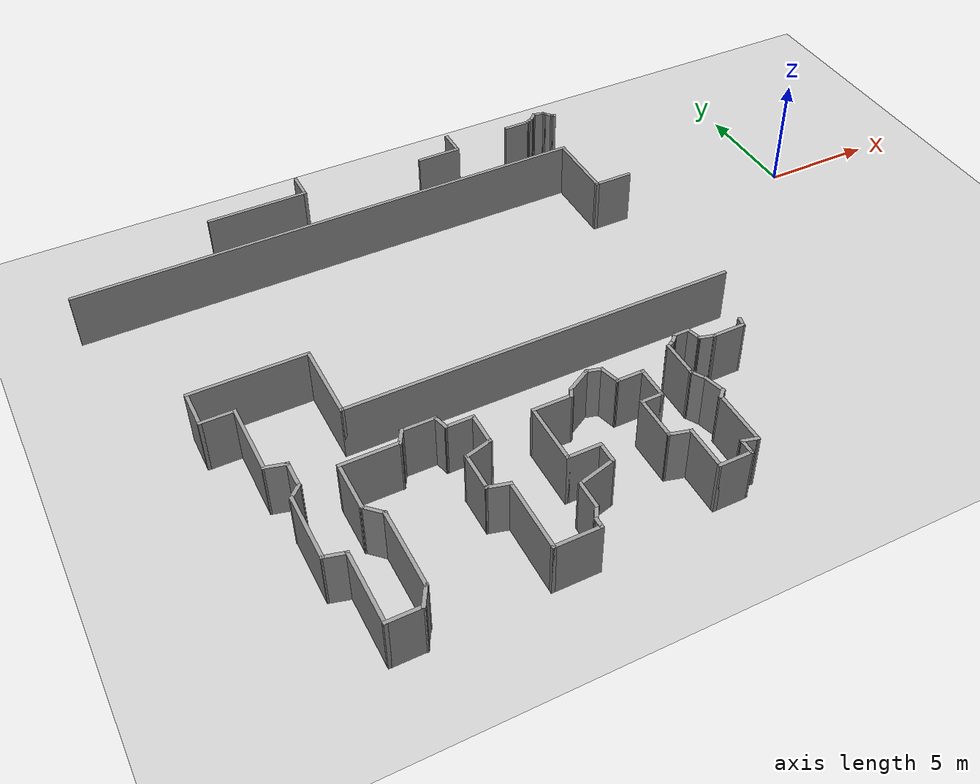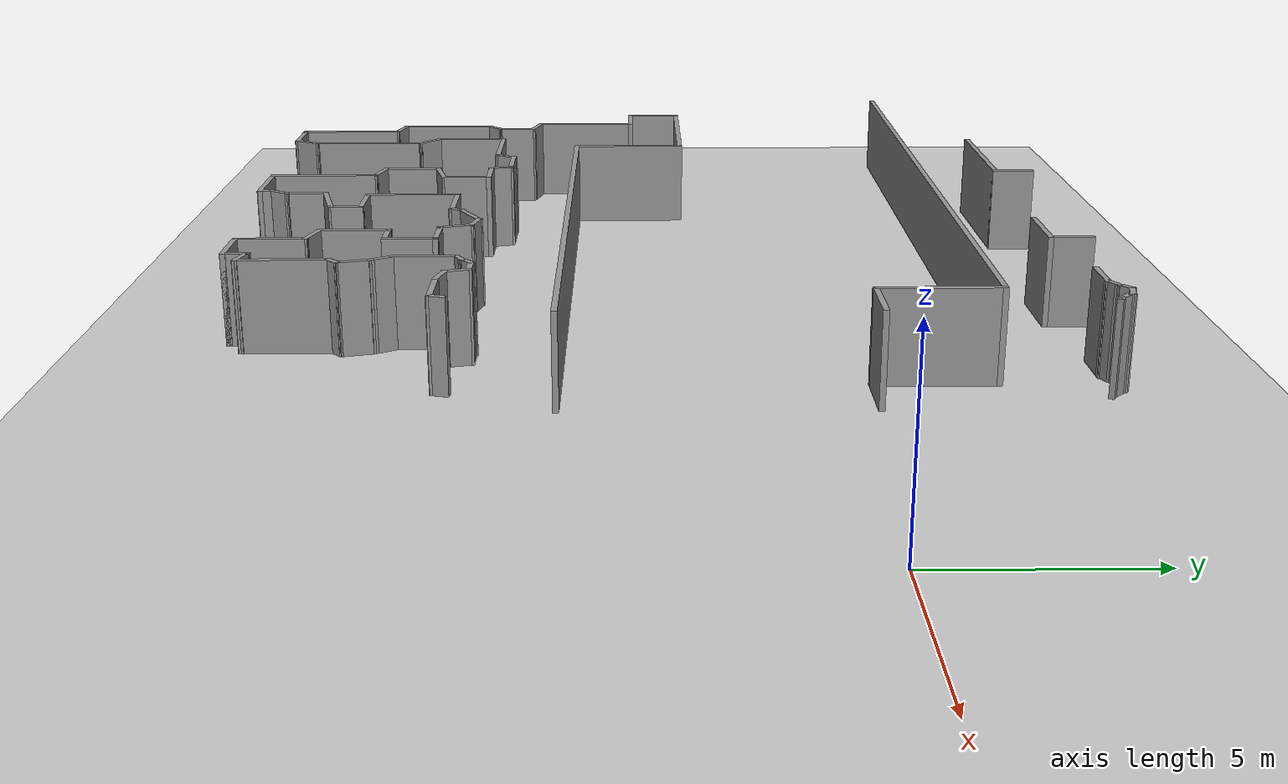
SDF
<sdf version="1.7">
 <world name="default">
  <model name="ground_plane">
   <static>1</static>
   <link name="link">
    <collision name="collision">
     <geometry><plane><normal>0 0 1</normal><size>100 100</size></plane></geometry>
     <surface>
      <contact><collide_bitmask>65535</collide_bitmask></contact>
      <friction><ode><mu>100</mu><mu2>50</mu2></ode></friction>
     </surface>
    </collision>
    <visual name="visual">
     <cast_shadows>0</cast_shadows>
     <geometry><plane><normal>0 0 1</normal><size>100 100</size></plane></geometry>
     <material>
      <script><uri>file://media/materials/scripts/gazebo.material</uri><name>Gazebo/Grey</name></script>
     </material>
    </visual>
   </link>
  </model>
  <model name="latest_world">
   <pose>-1.4911 -0.096187 0 0 -0 0</pose>
   <link name="Wall_100">
    <collision name="Wall_100_Collision">
     <geometry><box><size>1 0.15 2.5</size></box></geometry>
     <pose>0 0 1.25 0 -0 0</pose>
    </collision>
    <visual name="Wall_100_Visual">
     <pose>0 0 1.25 0 -0 0</pose>
     <geometry><box><size>1 0.15 2.5</size></box></geometry>
     <material>
      <script><uri>file://media/materials/scripts/gazebo.material</uri><name>Gazebo/Grey</name></script>
      <ambient>1 1 1 1</ambient>
     </material>
     <meta><layer>0</layer></meta>
    </visual>
    <pose>-10.3814 -12.0748 0 0 -0 -1.309</pose>
   </link>
   <link name="Wall_101">
    <collision name="Wall_101_Collision">
     <geometry><box><size>0.5 0.15 2.5</size></box></geometry>
     <pose>0 0 1.25 0 -0 0</pose>
    </collision>
    <visual name="Wall_101_Visual">
     <pose>0 0 1.25 0 -0 0</pose>
     <geometry><box><size>0.5 0.15 2.5</size></box></geometry>
     <material>
      <script><uri>file://media/materials/scripts/gazebo.material</uri><name>Gazebo/Grey</name></script>
      <ambient>1 1 1 1</ambient>
     </material>
     <meta><layer>0</layer></meta>
    </visual>
    <pose>-10.3951 -12.609 0 0 -0 -2.35619</pose>
   </link>
   <link name="Wall_102">
    <collision name="Wall_102_Collision">
     <geometry><box><size>2.5 0.15 2.5</size></box></geometry>
     <pose>0 0 1.25 0 -0 0</pose>
    </collision>
    <visual name="Wall_102_Visual">
     <pose>0 0 1.25 0 -0 0</pose>
     <geometry><box><size>2.5 0.15 2.5</size></box></geometry>
     <material>
      <script><uri>file://media/materials/scripts/gazebo.material</uri><name>Gazebo/Grey</name></script>
      <ambient>1 1 1 1</ambient>
     </material>
     <meta><layer>0</layer></meta>
    </visual>
    <pose>-10.5189 -13.9078 0 0 -0 -1.5708</pose>
   </link>
   <link name="Wall_103">
    <collision name="Wall_103_Collision">
     <geometry><box><size>0.75 0.15 2.5</size></box></geometry>
     <pose>0 0 1.25 0 -0 0</pose>
    </collision>
    <visual name="Wall_103_Visual">
     <pose>0 0 1.25 0 -0 0</pose>
     <geometry><box><size>0.75 0.15 2.5</size></box></geometry>
     <material>
      <script><uri>file://media/materials/scripts/gazebo.material</uri><name>Gazebo/Grey</name></script>
      <ambient>1 1 1 1</ambient>
     </material>
     <meta><layer>0</layer></meta>
    </visual>
    <pose>-10.8086 -15.0051 0 0 -0 2.87979</pose>
   </link>
   <link name="Wall_104">
    <collision name="Wall_104_Collision">
     <geometry><box><size>0.75 0.15 2.5</size></box></geometry>
     <pose>0 0 1.25 0 -0 0</pose>
    </collision>
    <visual name="Wall_104_Visual">
     <pose>0 0 1.25 0 -0 0</pose>
     <geometry><box><size>0.75 0.15 2.5</size></box></geometry>
     <material>
      <script><uri>file://media/materials/scripts/gazebo.material</uri><name>Gazebo/Grey</name></script>
      <ambient>1 1 1 1</ambient>
     </material>
     <meta><layer>0</layer></meta>
    </visual>
    <pose>-11.0984 -15.2275 0 0 -0 -1.5708</pose>
   </link>
   <link name="Wall_105">
    <collision name="Wall_105_Collision">
     <geometry><box><size>0.16 0.15 2.5</size></box></geometry>
     <pose>0 0 1.25 0 -0 0</pose>
    </collision>
    <visual name="Wall_105_Visual">
     <pose>0 0 1.25 0 -0 0</pose>
     <geometry><box><size>0.16 0.15 2.5</size></box></geometry>
     <material>
      <script><uri>file://media/materials/scripts/gazebo.material</uri><name>Gazebo/Grey</name></script>
      <ambient>1 1 1 1</ambient>
     </material>
     <meta><layer>0</layer></meta>
    </visual>
    <pose>-11.0934 -15.5275 0 0 -0 0</pose>
   </link>
   <link name="Wall_106">
    <collision name="Wall_106_Collision">
     <geometry><box><size>1.5 0.15 2.5</size></box></geometry>
     <pose>0 0 1.25 0 -0 0</pose>
    </collision>
    <visual name="Wall_106_Visual">
     <pose>0 0 1.25 0 -0 0</pose>
     <geometry><box><size>1.5 0.15 2.5</size></box></geometry>
     <material>
      <script><uri>file://media/materials/scripts/gazebo.material</uri><name>Gazebo/Grey</name></script>
      <ambient>1 1 1 1</ambient>
     </material>
     <meta><layer>0</layer></meta>
    </visual>
    <pose>-11.7634 -15.5275 0 0 -0 3.14159</pose>
   </link>
   <link name="Wall_107">
    <collision name="Wall_107_Collision">
     <geometry><box><size>2 0.15 2.5</size></box></geometry>
     <pose>0 0 1.25 0 -0 0</pose>
    </collision>
    <visual name="Wall_107_Visual">
     <pose>0 0 1.25 0 -0 0</pose>
     <geometry><box><size>2 0.15 2.5</size></box></geometry>
     <material>
      <script><uri>file://media/materials/scripts/gazebo.material</uri><name>Gazebo/Grey</name></script>
      <ambient>1 1 1 1</ambient>
     </material>
     <meta><layer>0</layer></meta>
    </visual>
    <pose>-12.4384 -14.6025 0 0 -0 1.5708</pose>
   </link>
   <link name="Wall_108">
    <collision name="Wall_108_Collision">
     <geometry><box><size>1 0.15 2.5</size></box></geometry>
     <pose>0 0 1.25 0 -0 0</pose>
    </collision>
    <visual name="Wall_108_Visual">
     <pose>0 0 1.25 0 -0 0</pose>
     <geometry><box><size>1 0.15 2.5</size></box></geometry>
     <material>
      <script><uri>file://media/materials/scripts/gazebo.material</uri><name>Gazebo/Grey</name></script>
      <ambient>1 1 1 1</ambient>
     </material>
     <meta><layer>0</layer></meta>
    </visual>
    <pose>-12.8489 -13.5675 0 0 -0 2.87979</pose>
   </link>
   <link name="Wall_109">
    <collision name="Wall_109_Collision">
     <geometry><box><size>2 0.15 2.5</size></box></geometry>
     <pose>0 0 1.25 0 -0 0</pose>
    </collision>
    <visual name="Wall_109_Visual">
     <pose>0 0 1.25 0 -0 0</pose>
     <geometry><box><size>2 0.15 2.5</size></box></geometry>
     <material>
      <script><uri>file://media/materials/scripts/gazebo.material</uri><name>Gazebo/Grey</name></script>
      <ambient>1 1 1 1</ambient>
     </material>
     <meta><layer>0</layer></meta>
    </visual>
    <pose>-13.2595 -12.5325 0 0 -0 1.5708</pose>
   </link>
   <link name="Wall_110">
    <collision name="Wall_110_Collision">
     <geometry><box><size>1 0.15 2.5</size></box></geometry>
     <pose>0 0 1.25 0 -0 0</pose>
    </collision>
    <visual name="Wall_110_Visual">
     <pose>0 0 1.25 0 -0 0</pose>
     <geometry><box><size>1 0.15 2.5</size></box></geometry>
     <material>
      <script><uri>file://media/materials/scripts/gazebo.material</uri><name>Gazebo/Grey</name></script>
      <ambient>1 1 1 1</ambient>
     </material>
     <meta><layer>0</layer></meta>
    </visual>
    <pose>-12.8345 -11.6075 0 0 -0 0</pose>
   </link>
   <link name="Wall_111">
    <collision name="Wall_111_Collision">
     <geometry><box><size>1.5 0.15 2.5</size></box></geometry>
     <pose>0 0 1.25 0 -0 0</pose>
    </collision>
    <visual name="Wall_111_Visual">
     <pose>0 0 1.25 0 -0 0</pose>
     <geometry><box><size>1.5 0.15 2.5</size></box></geometry>
     <material>
      <script><uri>file://media/materials/scripts/gazebo.material</uri><name>Gazebo/Grey</name></script>
      <ambient>1 1 1 1</ambient>
     </material>
     <meta><layer>0</layer></meta>
    </visual>
    <pose>-12.4095 -10.9325 0 0 -0 1.5708</pose>
   </link>
   <link name="Wall_112">
    <collision name="Wall_112_Collision">
     <geometry><box><size>1.25 0.15 2.5</size></box></geometry>
     <pose>0 0 1.25 0 -0 0</pose>
    </collision>
    <visual name="Wall_112_Visual">
     <pose>0 0 1.25 0 -0 0</pose>
     <geometry><box><size>1.25 0.15 2.5</size></box></geometry>
     <material>
      <script><uri>file://media/materials/scripts/gazebo.material</uri><name>Gazebo/Grey</name></script>
      <ambient>1 1 1 1</ambient>
     </material>
     <meta><layer>0</layer></meta>
    </visual>
    <pose>-12.9595 -10.2575 0 0 -0 3.14159</pose>
   </link>
   <link name="Wall_113">
    <collision name="Wall_113_Collision">
     <geometry><box><size>1 0.15 2.5</size></box></geometry>
     <pose>0 0 1.25 0 -0 0</pose>
    </collision>
    <visual name="Wall_113_Visual">
     <pose>0 0 1.25 0 -0 0</pose>
     <geometry><box><size>1 0.15 2.5</size></box></geometry>
     <material>
      <script><uri>file://media/materials/scripts/gazebo.material</uri><name>Gazebo/Grey</name></script>
      <ambient>1 1 1 1</ambient>
     </material>
     <meta><layer>0</layer></meta>
    </visual>
    <pose>-13.6195 -9.84696 0 0 -0 1.8326</pose>
   </link>
   <link name="Wall_114">
    <collision name="Wall_114_Collision">
     <geometry><box><size>0.75 0.15 2.5</size></box></geometry>
     <pose>0 0 1.25 0 -0 0</pose>
    </collision>
    <visual name="Wall_114_Visual">
     <pose>0 0 1.25 0 -0 0</pose>
     <geometry><box><size>0.75 0.15 2.5</size></box></geometry>
     <material>
      <script><uri>file://media/materials/scripts/gazebo.material</uri><name>Gazebo/Grey</name></script>
      <ambient>1 1 1 1</ambient>
     </material>
     <meta><layer>0</layer></meta>
    </visual>
    <pose>-14.0192 -9.3588 0 0 -0 2.87979</pose>
   </link>
   <link name="Wall_115">
    <collision name="Wall_115_Collision">
     <geometry><box><size>1.25 0.15 2.5</size></box></geometry>
     <pose>0 0 1.25 0 -0 0</pose>
    </collision>
    <visual name="Wall_115_Visual">
     <pose>0 0 1.25 0 -0 0</pose>
     <geometry><box><size>1.25 0.15 2.5</size></box></geometry>
     <material>
      <script><uri>file://media/materials/scripts/gazebo.material</uri><name>Gazebo/Grey</name></script>
      <ambient>1 1 1 1</ambient>
     </material>
     <meta><layer>0</layer></meta>
    </visual>
    <pose>-14.7853 -9.55615 0 0 -0 -2.61799</pose>
   </link>
   <link name="Wall_116">
    <collision name="Wall_116_Collision">
     <geometry><box><size>0.5 0.15 2.5</size></box></geometry>
     <pose>0 0 1.25 0 -0 0</pose>
    </collision>
    <visual name="Wall_116_Visual">
     <pose>0 0 1.25 0 -0 0</pose>
     <geometry><box><size>0.5 0.15 2.5</size></box></geometry>
     <material>
      <script><uri>file://media/materials/scripts/gazebo.material</uri><name>Gazebo/Grey</name></script>
      <ambient>1 1 1 1</ambient>
     </material>
     <meta><layer>0</layer></meta>
    </visual>
    <pose>-15.3491 -9.98271 0 0 -0 -2.0944</pose>
   </link>
   <link name="Wall_117">
    <collision name="Wall_117_Collision">
     <geometry><box><size>1.75 0.15 2.5</size></box></geometry>
     <pose>0 0 1.25 0 -0 0</pose>
    </collision>
    <visual name="Wall_117_Visual">
     <pose>0 0 1.25 0 -0 0</pose>
     <geometry><box><size>1.75 0.15 2.5</size></box></geometry>
     <material>
      <script><uri>file://media/materials/scripts/gazebo.material</uri><name>Gazebo/Grey</name></script>
      <ambient>1 1 1 1</ambient>
     </material>
     <meta><layer>0</layer></meta>
    </visual>
    <pose>-16.2366 -10.1343 0 0 -0 3.14159</pose>
   </link>
   <link name="Wall_118">
    <collision name="Wall_118_Collision">
     <geometry><box><size>2.75 0.15 2.5</size></box></geometry>
     <pose>0 0 1.25 0 -0 0</pose>
    </collision>
    <visual name="Wall_118_Visual">
     <pose>0 0 1.25 0 -0 0</pose>
     <geometry><box><size>2.75 0.15 2.5</size></box></geometry>
     <material>
      <script><uri>file://media/materials/scripts/gazebo.material</uri><name>Gazebo/Grey</name></script>
      <ambient>1 1 1 1</ambient>
     </material>
     <meta><layer>0</layer></meta>
    </visual>
    <pose>-17.0366 -11.4343 0 0 -0 -1.5708</pose>
   </link>
   <link name="Wall_119">
    <collision name="Wall_119_Collision">
     <geometry><box><size>1.5 0.15 2.5</size></box></geometry>
     <pose>0 0 1.25 0 -0 0</pose>
    </collision>
    <visual name="Wall_119_Visual">
     <pose>0 0 1.25 0 -0 0</pose>
     <geometry><box><size>1.5 0.15 2.5</size></box></geometry>
     <material>
      <script><uri>file://media/materials/scripts/gazebo.material</uri><name>Gazebo/Grey</name></script>
      <ambient>1 1 1 1</ambient>
     </material>
     <meta><layer>0</layer></meta>
    </visual>
    <pose>-16.3616 -12.7343 0 0 -0 0</pose>
   </link>
   <link name="Wall_120">
    <collision name="Wall_120_Collision">
     <geometry><box><size>1 0.15 2.5</size></box></geometry>
     <pose>0 0 1.25 0 -0 0</pose>
    </collision>
    <visual name="Wall_120_Visual">
     <pose>0 0 1.25 0 -0 0</pose>
     <geometry><box><size>1 0.15 2.5</size></box></geometry>
     <material>
      <script><uri>file://media/materials/scripts/gazebo.material</uri><name>Gazebo/Grey</name></script>
      <ambient>1 1 1 1</ambient>
     </material>
     <meta><layer>0</layer></meta>
    </visual>
    <pose>-15.6866 -13.1593 0 0 -0 -1.5708</pose>
   </link>
   <link name="Wall_121">
    <collision name="Wall_121_Collision">
     <geometry><box><size>1.75 0.15 2.5</size></box></geometry>
     <pose>0 0 1.25 0 -0 0</pose>
    </collision>
    <visual name="Wall_121_Visual">
     <pose>0 0 1.25 0 -0 0</pose>
     <geometry><box><size>1.75 0.15 2.5</size></box></geometry>
     <material>
      <script><uri>file://media/materials/scripts/gazebo.material</uri><name>Gazebo/Grey</name></script>
      <ambient>1 1 1 1</ambient>
     </material>
     <meta><layer>0</layer></meta>
    </visual>
    <pose>-16.4594 -13.7913 0 0 -0 -2.87979</pose>
   </link>
   <link name="Wall_122">
    <collision name="Wall_122_Collision">
     <geometry><box><size>1.25 0.15 2.5</size></box></geometry>
     <pose>0 0 1.25 0 -0 0</pose>
    </collision>
    <visual name="Wall_122_Visual">
     <pose>0 0 1.25 0 -0 0</pose>
     <geometry><box><size>1.25 0.15 2.5</size></box></geometry>
     <material>
      <script><uri>file://media/materials/scripts/gazebo.material</uri><name>Gazebo/Grey</name></script>
      <ambient>1 1 1 1</ambient>
     </material>
     <meta><layer>0</layer></meta>
    </visual>
    <pose>-17.2321 -14.5484 0 0 -0 -1.5708</pose>
   </link>
   <link name="Wall_123">
    <collision name="Wall_123_Collision">
     <geometry><box><size>0.75 0.15 2.5</size></box></geometry>
     <pose>0 0 1.25 0 -0 0</pose>
    </collision>
    <visual name="Wall_123_Visual">
     <pose>0 0 1.25 0 -0 0</pose>
     <geometry><box><size>0.75 0.15 2.5</size></box></geometry>
     <material>
      <script><uri>file://media/materials/scripts/gazebo.material</uri><name>Gazebo/Grey</name></script>
      <ambient>1 1 1 1</ambient>
     </material>
     <meta><layer>0</layer></meta>
    </visual>
    <pose>-17.3821 -15.3582 0 0 -0 -2.0944</pose>
   </link>
   <link name="Wall_124">
    <collision name="Wall_124_Collision">
     <geometry><box><size>0.5 0.15 2.5</size></box></geometry>
     <pose>0 0 1.25 0 -0 0</pose>
    </collision>
    <visual name="Wall_124_Visual">
     <pose>0 0 1.25 0 -0 0</pose>
     <geometry><box><size>0.5 0.15 2.5</size></box></geometry>
     <material>
      <script><uri>file://media/materials/scripts/gazebo.material</uri><name>Gazebo/Grey</name></script>
      <ambient>1 1 1 1</ambient>
     </material>
     <meta><layer>0</layer></meta>
    </visual>
    <pose>-17.5321 -15.793 0 0 -0 -1.5708</pose>
   </link>
   <link name="Wall_125">
    <collision name="Wall_125_Collision">
     <geometry><box><size>2 0.15 2.5</size></box></geometry>
     <pose>0 0 1.25 0 -0 0</pose>
    </collision>
    <visual name="Wall_125_Visual">
     <pose>0 0 1.25 0 -0 0</pose>
     <geometry><box><size>2 0.15 2.5</size></box></geometry>
     <material>
      <script><uri>file://media/materials/scripts/gazebo.material</uri><name>Gazebo/Grey</name></script>
      <ambient>1 1 1 1</ambient>
     </material>
     <meta><layer>0</layer></meta>
    </visual>
    <pose>-18.4571 -15.968 0 0 -0 3.14159</pose>
   </link>
   <link name="Wall_126">
    <collision name="Wall_126_Collision">
     <geometry><box><size>3.25 0.15 2.5</size></box></geometry>
     <pose>0 0 1.25 0 -0 0</pose>
    </collision>
    <visual name="Wall_126_Visual">
     <pose>0 0 1.25 0 -0 0</pose>
     <geometry><box><size>3.25 0.15 2.5</size></box></geometry>
     <material>
      <script><uri>file://media/materials/scripts/gazebo.material</uri><name>Gazebo/Grey</name></script>
      <ambient>1 1 1 1</ambient>
     </material>
     <meta><layer>0</layer></meta>
    </visual>
    <pose>-19.3821 -14.418 0 0 -0 1.5708</pose>
   </link>
   <link name="Wall_127">
    <collision name="Wall_127_Collision">
     <geometry><box><size>1 0.15 2.5</size></box></geometry>
     <pose>0 0 1.25 0 -0 0</pose>
    </collision>
    <visual name="Wall_127_Visual">
     <pose>0 0 1.25 0 -0 0</pose>
     <geometry><box><size>1 0.15 2.5</size></box></geometry>
     <material>
      <script><uri>file://media/materials/scripts/gazebo.material</uri><name>Gazebo/Grey</name></script>
      <ambient>1 1 1 1</ambient>
     </material>
     <meta><layer>0</layer></meta>
    </visual>
    <pose>-19.7926 -12.758 0 0 -0 2.87979</pose>
   </link>
   <link name="Wall_128">
    <collision name="Wall_128_Collision">
     <geometry><box><size>1.75 0.15 2.5</size></box></geometry>
     <pose>0 0 1.25 0 -0 0</pose>
    </collision>
    <visual name="Wall_128_Visual">
     <pose>0 0 1.25 0 -0 0</pose>
     <geometry><box><size>1.75 0.15 2.5</size></box></geometry>
     <material>
      <script><uri>file://media/materials/scripts/gazebo.material</uri><name>Gazebo/Grey</name></script>
      <ambient>1 1 1 1</ambient>
     </material>
     <meta><layer>0</layer></meta>
    </visual>
    <pose>-20.2032 -11.848 0 0 -0 1.5708</pose>
   </link>
   <link name="Wall_129">
    <collision name="Wall_129_Collision">
     <geometry><box><size>1.25 0.15 2.5</size></box></geometry>
     <pose>0 0 1.25 0 -0 0</pose>
    </collision>
    <visual name="Wall_129_Visual">
     <pose>0 0 1.25 0 -0 0</pose>
     <geometry><box><size>1.25 0.15 2.5</size></box></geometry>
     <material>
      <script><uri>file://media/materials/scripts/gazebo.material</uri><name>Gazebo/Grey</name></script>
      <ambient>1 1 1 1</ambient>
     </material>
     <meta><layer>0</layer></meta>
    </visual>
    <pose>-19.6719 -10.9056 0 0 -0 0.261799</pose>
   </link>
   <link name="Wall_130">
    <collision name="Wall_130_Collision">
     <geometry><box><size>1.5 0.15 2.5</size></box></geometry>
     <pose>0 0 1.25 0 -0 0</pose>
    </collision>
    <visual name="Wall_130_Visual">
     <pose>0 0 1.25 0 -0 0</pose>
     <geometry><box><size>1.5 0.15 2.5</size></box></geometry>
     <material>
      <script><uri>file://media/materials/scripts/gazebo.material</uri><name>Gazebo/Grey</name></script>
      <ambient>1 1 1 1</ambient>
     </material>
     <meta><layer>0</layer></meta>
    </visual>
    <pose>-19.1406 -10.0883 0 0 -0 1.5708</pose>
   </link>
   <link name="Wall_131">
    <collision name="Wall_131_Collision">
     <geometry><box><size>1.25 0.15 2.5</size></box></geometry>
     <pose>0 0 1.25 0 -0 0</pose>
    </collision>
    <visual name="Wall_131_Visual">
     <pose>0 0 1.25 0 -0 0</pose>
     <geometry><box><size>1.25 0.15 2.5</size></box></geometry>
     <material>
      <script><uri>file://media/materials/scripts/gazebo.material</uri><name>Gazebo/Grey</name></script>
      <ambient>1 1 1 1</ambient>
     </material>
     <meta><layer>0</layer></meta>
    </visual>
    <pose>-19.6906 -9.41329 0 0 -0 3.14159</pose>
   </link>
   <link name="Wall_132">
    <collision name="Wall_132_Collision">
     <geometry><box><size>0.75 0.15 2.5</size></box></geometry>
     <pose>0 0 1.25 0 -0 0</pose>
    </collision>
    <visual name="Wall_132_Visual">
     <pose>0 0 1.25 0 -0 0</pose>
     <geometry><box><size>0.75 0.15 2.5</size></box></geometry>
     <material>
      <script><uri>file://media/materials/scripts/gazebo.material</uri><name>Gazebo/Grey</name></script>
      <ambient>1 1 1 1</ambient>
     </material>
     <meta><layer>0</layer></meta>
    </visual>
    <pose>-20.3183 -9.12351 0 0 -0 1.8326</pose>
   </link>
   <link name="Wall_133">
    <collision name="Wall_133_Collision">
     <geometry><box><size>1.5 0.15 2.5</size></box></geometry>
     <pose>0 0 1.25 0 -0 0</pose>
    </collision>
    <visual name="Wall_133_Visual">
     <pose>0 0 1.25 0 -0 0</pose>
     <geometry><box><size>1.5 0.15 2.5</size></box></geometry>
     <material>
      <script><uri>file://media/materials/scripts/gazebo.material</uri><name>Gazebo/Grey</name></script>
      <ambient>1 1 1 1</ambient>
     </material>
     <meta><layer>0</layer></meta>
    </visual>
    <pose>-21.0709 -8.83374 0 0 -0 3.14159</pose>
   </link>
   <link name="Wall_134">
    <collision name="Wall_134_Collision">
     <geometry><box><size>0.75 0.15 2.5</size></box></geometry>
     <pose>0 0 1.25 0 -0 0</pose>
    </collision>
    <visual name="Wall_134_Visual">
     <pose>0 0 1.25 0 -0 0</pose>
     <geometry><box><size>0.75 0.15 2.5</size></box></geometry>
     <material>
      <script><uri>file://media/materials/scripts/gazebo.material</uri><name>Gazebo/Grey</name></script>
      <ambient>1 1 1 1</ambient>
     </material>
     <meta><layer>0</layer></meta>
    </visual>
    <pose>-21.8959 -9.09354 0 0 -0 -2.0944</pose>
   </link>
   <link name="Wall_135">
    <collision name="Wall_135_Collision">
     <geometry><box><size>2.5 0.15 2.5</size></box></geometry>
     <pose>0 0 1.25 0 -0 0</pose>
    </collision>
    <visual name="Wall_135_Visual">
     <pose>0 0 1.25 0 -0 0</pose>
     <geometry><box><size>2.5 0.15 2.5</size></box></geometry>
     <material>
      <script><uri>file://media/materials/scripts/gazebo.material</uri><name>Gazebo/Grey</name></script>
      <ambient>1 1 1 1</ambient>
     </material>
     <meta><layer>0</layer></meta>
    </visual>
    <pose>-23.2209 -9.35335 0 0 -0 3.14159</pose>
   </link>
   <link name="Wall_136">
    <collision name="Wall_136_Collision">
     <geometry><box><size>2.25 0.15 2.5</size></box></geometry>
     <pose>0 0 1.25 0 -0 0</pose>
    </collision>
    <visual name="Wall_136_Visual">
     <pose>0 0 1.25 0 -0 0</pose>
     <geometry><box><size>2.25 0.15 2.5</size></box></geometry>
     <material>
      <script><uri>file://media/materials/scripts/gazebo.material</uri><name>Gazebo/Grey</name></script>
      <ambient>1 1 1 1</ambient>
     </material>
     <meta><layer>0</layer></meta>
    </visual>
    <pose>-24.3959 -10.4033 0 0 -0 -1.5708</pose>
   </link>
   <link name="Wall_137">
    <collision name="Wall_137_Collision">
     <geometry><box><size>1 0.15 2.5</size></box></geometry>
     <pose>0 0 1.25 0 -0 0</pose>
    </collision>
    <visual name="Wall_137_Visual">
     <pose>0 0 1.25 0 -0 0</pose>
     <geometry><box><size>1 0.15 2.5</size></box></geometry>
     <material>
      <script><uri>file://media/materials/scripts/gazebo.material</uri><name>Gazebo/Grey</name></script>
      <ambient>1 1 1 1</ambient>
     </material>
     <meta><layer>0</layer></meta>
    </visual>
    <pose>-24.0954 -11.7539 0 0 -0 -0.785398</pose>
   </link>
   <link name="Wall_138">
    <collision name="Wall_138_Collision">
     <geometry><box><size>3.5 0.15 2.5</size></box></geometry>
     <pose>0 0 1.25 0 -0 0</pose>
    </collision>
    <visual name="Wall_138_Visual">
     <pose>0 0 1.25 0 -0 0</pose>
     <geometry><box><size>3.5 0.15 2.5</size></box></geometry>
     <material>
      <script><uri>file://media/materials/scripts/gazebo.material</uri><name>Gazebo/Grey</name></script>
      <ambient>1 1 1 1</ambient>
     </material>
     <meta><layer>0</layer></meta>
    </visual>
    <pose>-23.7949 -13.7294 0 0 -0 -1.5708</pose>
   </link>
   <link name="Wall_139">
    <collision name="Wall_139_Collision">
     <geometry><box><size>1 0.15 2.5</size></box></geometry>
     <pose>0 0 1.25 0 -0 0</pose>
    </collision>
    <visual name="Wall_139_Visual">
     <pose>0 0 1.25 0 -0 0</pose>
     <geometry><box><size>1 0.15 2.5</size></box></geometry>
     <material>
      <script><uri>file://media/materials/scripts/gazebo.material</uri><name>Gazebo/Grey</name></script>
      <ambient>1 1 1 1</ambient>
     </material>
     <meta><layer>0</layer></meta>
    </visual>
    <pose>-24.0074 -15.7725 0 0 -0 -2.0944</pose>
   </link>
   <link name="Wall_140">
    <collision name="Wall_140_Collision">
     <geometry><box><size>1.5 0.15 2.5</size></box></geometry>
     <pose>0 0 1.25 0 -0 0</pose>
    </collision>
    <visual name="Wall_140_Visual">
     <pose>0 0 1.25 0 -0 0</pose>
     <geometry><box><size>1.5 0.15 2.5</size></box></geometry>
     <material>
      <script><uri>file://media/materials/scripts/gazebo.material</uri><name>Gazebo/Grey</name></script>
      <ambient>1 1 1 1</ambient>
     </material>
     <meta><layer>0</layer></meta>
    </visual>
    <pose>-24.8949 -16.1405 0 0 -0 3.14159</pose>
   </link>
   <link name="Wall_141">
    <collision name="Wall_141_Collision">
     <geometry><box><size>3.25 0.15 2.5</size></box></geometry>
     <pose>0 0 1.25 0 -0 0</pose>
    </collision>
    <visual name="Wall_141_Visual">
     <pose>0 0 1.25 0 -0 0</pose>
     <geometry><box><size>3.25 0.15 2.5</size></box></geometry>
     <material>
      <script><uri>file://media/materials/scripts/gazebo.material</uri><name>Gazebo/Grey</name></script>
      <ambient>1 1 1 1</ambient>
     </material>
     <meta><layer>0</layer></meta>
    </visual>
    <pose>-25.5699 -14.5905 0 0 -0 1.5708</pose>
   </link>
   <link name="Wall_142">
    <collision name="Wall_142_Collision">
     <geometry><box><size>1 0.15 2.5</size></box></geometry>
     <pose>0 0 1.25 0 -0 0</pose>
    </collision>
    <visual name="Wall_142_Visual">
     <pose>0 0 1.25 0 -0 0</pose>
     <geometry><box><size>1 0.15 2.5</size></box></geometry>
     <material>
      <script><uri>file://media/materials/scripts/gazebo.material</uri><name>Gazebo/Grey</name></script>
      <ambient>1 1 1 1</ambient>
     </material>
     <meta><layer>0</layer></meta>
    </visual>
    <pose>-25.9804 -12.9305 0 0 -0 2.87979</pose>
   </link>
   <link name="Wall_143">
    <collision name="Wall_143_Collision">
     <geometry><box><size>3 0.15 2.5</size></box></geometry>
     <pose>0 0 1.25 0 -0 0</pose>
    </collision>
    <visual name="Wall_143_Visual">
     <pose>0 0 1.25 0 -0 0</pose>
     <geometry><box><size>3 0.15 2.5</size></box></geometry>
     <material>
      <script><uri>file://media/materials/scripts/gazebo.material</uri><name>Gazebo/Grey</name></script>
      <ambient>1 1 1 1</ambient>
     </material>
     <meta><layer>0</layer></meta>
    </visual>
    <pose>-26.3909 -11.3955 0 0 -0 1.5708</pose>
   </link>
   <link name="Wall_144">
    <collision name="Wall_144_Collision">
     <geometry><box><size>0.75 0.15 2.5</size></box></geometry>
     <pose>0 0 1.25 0 -0 0</pose>
    </collision>
    <visual name="Wall_144_Visual">
     <pose>0 0 1.25 0 -0 0</pose>
     <geometry><box><size>0.75 0.15 2.5</size></box></geometry>
     <material>
      <script><uri>file://media/materials/scripts/gazebo.material</uri><name>Gazebo/Grey</name></script>
      <ambient>1 1 1 1</ambient>
     </material>
     <meta><layer>0</layer></meta>
    </visual>
    <pose>-26.1788 -9.75839 0 0 -0 0.785398</pose>
   </link>
   <link name="Wall_145">
    <collision name="Wall_145_Collision">
     <geometry><box><size>1.25 0.15 2.5</size></box></geometry>
     <pose>0 0 1.25 0 -0 0</pose>
    </collision>
    <visual name="Wall_145_Visual">
     <pose>0 0 1.25 0 -0 0</pose>
     <geometry><box><size>1.25 0.15 2.5</size></box></geometry>
     <material>
      <script><uri>file://media/materials/scripts/gazebo.material</uri><name>Gazebo/Grey</name></script>
      <ambient>1 1 1 1</ambient>
     </material>
     <meta><layer>0</layer></meta>
    </visual>
    <pose>-25.9667 -8.99625 0 0 -0 1.5708</pose>
   </link>
   <link name="Wall_146">
    <collision name="Wall_146_Collision">
     <geometry><box><size>1 0.15 2.5</size></box></geometry>
     <pose>0 0 1.25 0 -0 0</pose>
    </collision>
    <visual name="Wall_146_Visual">
     <pose>0 0 1.25 0 -0 0</pose>
     <geometry><box><size>1 0.15 2.5</size></box></geometry>
     <material>
      <script><uri>file://media/materials/scripts/gazebo.material</uri><name>Gazebo/Grey</name></script>
      <ambient>1 1 1 1</ambient>
     </material>
     <meta><layer>0</layer></meta>
    </visual>
    <pose>-26.3772 -8.33625 0 0 -0 2.87979</pose>
   </link>
   <link name="Wall_147">
    <collision name="Wall_147_Collision">
     <geometry><box><size>3.25 0.15 2.5</size></box></geometry>
     <pose>0 0 1.25 0 -0 0</pose>
    </collision>
    <visual name="Wall_147_Visual">
     <pose>0 0 1.25 0 -0 0</pose>
     <geometry><box><size>3.25 0.15 2.5</size></box></geometry>
     <material>
      <script><uri>file://media/materials/scripts/gazebo.material</uri><name>Gazebo/Grey</name></script>
      <ambient>1 1 1 1</ambient>
     </material>
     <meta><layer>0</layer></meta>
    </visual>
    <pose>-26.7877 -6.67626 0 0 -0 1.5708</pose>
   </link>
   <link name="Wall_148">
    <collision name="Wall_148_Collision">
     <geometry><box><size>1.5 0.15 2.5</size></box></geometry>
     <pose>0 0 1.25 0 -0 0</pose>
    </collision>
    <visual name="Wall_148_Visual">
     <pose>0 0 1.25 0 -0 0</pose>
     <geometry><box><size>1.5 0.15 2.5</size></box></geometry>
     <material>
      <script><uri>file://media/materials/scripts/gazebo.material</uri><name>Gazebo/Grey</name></script>
      <ambient>1 1 1 1</ambient>
     </material>
     <meta><layer>0</layer></meta>
    </visual>
    <pose>-27.4627 -5.12626 0 0 -0 3.14159</pose>
   </link>
   <link name="Wall_149">
    <collision name="Wall_149_Collision">
     <geometry><box><size>1.75 0.15 2.5</size></box></geometry>
     <pose>0 0 1.25 0 -0 0</pose>
    </collision>
    <visual name="Wall_149_Visual">
     <pose>0 0 1.25 0 -0 0</pose>
     <geometry><box><size>1.75 0.15 2.5</size></box></geometry>
     <material>
      <script><uri>file://media/materials/scripts/gazebo.material</uri><name>Gazebo/Grey</name></script>
      <ambient>1 1 1 1</ambient>
     </material>
     <meta><layer>0</layer></meta>
    </visual>
    <pose>-28.1377 -4.32626 0 0 -0 1.5708</pose>
   </link>
   <link name="Wall_150">
    <collision name="Wall_150_Collision">
     <geometry><box><size>5 0.15 2.5</size></box></geometry>
     <pose>0 0 1.25 0 -0 0</pose>
    </collision>
    <visual name="Wall_150_Visual">
     <pose>0 0 1.25 0 -0 0</pose>
     <geometry><box><size>5 0.15 2.5</size></box></geometry>
     <material>
      <script><uri>file://media/materials/scripts/gazebo.material</uri><name>Gazebo/Grey</name></script>
      <ambient>1 1 1 1</ambient>
     </material>
     <meta><layer>0</layer></meta>
    </visual>
    <pose>-25.7127 -3.52626 0 0 -0 0</pose>
   </link>
   <link name="Wall_151">
    <collision name="Wall_151_Collision">
     <geometry><box><size>3.5 0.15 2.5</size></box></geometry>
     <pose>0 0 1.25 0 -0 0</pose>
    </collision>
    <visual name="Wall_151_Visual">
     <pose>0 0 1.25 0 -0 0</pose>
     <geometry><box><size>3.5 0.15 2.5</size></box></geometry>
     <material>
      <script><uri>file://media/materials/scripts/gazebo.material</uri><name>Gazebo/Grey</name></script>
      <ambient>1 1 1 1</ambient>
     </material>
     <meta><layer>0</layer></meta>
    </visual>
    <pose>-23.2877 -5.20126 0 0 -0 -1.5708</pose>
   </link>
   <link name="Wall_152">
    <collision name="Wall_152_Collision">
     <geometry><box><size>17 0.15 2.5</size></box></geometry>
     <pose>0 0 1.25 0 -0 0</pose>
    </collision>
    <visual name="Wall_152_Visual">
     <pose>0 0 1.25 0 -0 0</pose>
     <geometry><box><size>17 0.15 2.5</size></box></geometry>
     <material>
      <script><uri>file://media/materials/scripts/gazebo.material</uri><name>Gazebo/Grey</name></script>
      <ambient>1 1 1 1</ambient>
     </material>
     <meta><layer>0</layer></meta>
    </visual>
    <pose>-14.8627 -6.87626 0 0 -0 0</pose>
   </link>
   <link name="Wall_154">
    <collision name="Wall_154_Collision">
     <geometry><box><size>1.75 0.15 2.5</size></box></geometry>
     <pose>0 0 1.25 0 -0 0</pose>
    </collision>
    <visual name="Wall_154_Visual">
     <pose>0 0 1.25 0 -0 0</pose>
     <geometry><box><size>1.75 0.15 2.5</size></box></geometry>
     <material>
      <script><uri>file://media/materials/scripts/gazebo.material</uri><name>Gazebo/Grey</name></script>
      <ambient>1 1 1 1</ambient>
     </material>
     <meta><layer>0</layer></meta>
    </visual>
    <pose>-7.2377 0.723744 0 0 -0 3.14159</pose>
   </link>
   <link name="Wall_155">
    <collision name="Wall_155_Collision">
     <geometry><box><size>3.25 0.15 2.5</size></box></geometry>
     <pose>0 0 1.25 0 -0 0</pose>
    </collision>
    <visual name="Wall_155_Visual">
     <pose>0 0 1.25 0 -0 0</pose>
     <geometry><box><size>3.25 0.15 2.5</size></box></geometry>
     <material>
      <script><uri>file://media/materials/scripts/gazebo.material</uri><name>Gazebo/Grey</name></script>
      <ambient>1 1 1 1</ambient>
     </material>
     <meta><layer>0</layer></meta>
    </visual>
    <pose>-8.0377 2.27374 0 0 -0 1.5708</pose>
   </link>
   <link name="Wall_156">
    <collision name="Wall_156_Collision">
     <geometry><box><size>22.75 0.15 2.5</size></box></geometry>
     <pose>0 0 1.25 0 -0 0</pose>
    </collision>
    <visual name="Wall_156_Visual">
     <pose>0 0 1.25 0 -0 0</pose>
     <geometry><box><size>22.75 0.15 2.5</size></box></geometry>
     <material>
      <script><uri>file://media/materials/scripts/gazebo.material</uri><name>Gazebo/Grey</name></script>
      <ambient>1 1 1 1</ambient>
     </material>
     <meta><layer>0</layer></meta>
    </visual>
    <pose>-19.3377 3.82374 0 0 -0 3.14159</pose>
   </link>
   <link name="Wall_168">
    <collision name="Wall_168_Collision">
     <geometry><box><size>4.5 0.15 2.5</size></box></geometry>
     <pose>0 0 1.25 0 -0 0</pose>
    </collision>
    <visual name="Wall_168_Visual">
     <pose>0 0 1.25 0 -0 0</pose>
     <geometry><box><size>4.5 0.15 2.5</size></box></geometry>
     <material>
      <script><uri>file://media/materials/scripts/gazebo.material</uri><name>Gazebo/Grey</name></script>
      <ambient>1 1 1 1</ambient>
     </material>
     <meta><layer>0</layer></meta>
    </visual>
    <pose>-21.9532 6.07864 0 0 -0 0</pose>
   </link>
   <link name="Wall_169">
    <collision name="Wall_169_Collision">
     <geometry><box><size>1.25 0.15 2.5</size></box></geometry>
     <pose>0 0 1.25 0 -0 0</pose>
    </collision>
    <visual name="Wall_169_Visual">
     <pose>0 0 1.25 0 -0 0</pose>
     <geometry><box><size>1.25 0.15 2.5</size></box></geometry>
     <material>
      <script><uri>file://media/materials/scripts/gazebo.material</uri><name>Gazebo/Grey</name></script>
      <ambient>1 1 1 1</ambient>
     </material>
     <meta><layer>0</layer></meta>
    </visual>
    <pose>-19.7782 6.62864 0 0 -0 1.5708</pose>
   </link>
   <link name="Wall_222">
    <collision name="Wall_222_Collision">
     <geometry><box><size>1.25 0.15 2.5</size></box></geometry>
     <pose>0 0 1.25 0 -0 0</pose>
    </collision>
    <visual name="Wall_222_Visual">
     <pose>0 0 1.25 0 -0 0</pose>
     <geometry><box><size>1.25 0.15 2.5</size></box></geometry>
     <material>
      <script><uri>file://media/materials/scripts/gazebo.material</uri><name>Gazebo/Grey</name></script>
      <ambient>1 1 1 1</ambient>
     </material>
     <meta><layer>0</layer></meta>
    </visual>
    <pose>-12.3925 6.51837 0 0 -0 -1.5708</pose>
   </link>
   <link name="Wall_223">
    <collision name="Wall_223_Collision">
     <geometry><box><size>2 0.15 2.5</size></box></geometry>
     <pose>0 0 1.25 0 -0 0</pose>
    </collision>
    <visual name="Wall_223_Visual">
     <pose>0 0 1.25 0 -0 0</pose>
     <geometry><box><size>2 0.15 2.5</size></box></geometry>
     <material>
      <script><uri>file://media/materials/scripts/gazebo.material</uri><name>Gazebo/Grey</name></script>
      <ambient>1 1 1 1</ambient>
     </material>
     <meta><layer>0</layer></meta>
    </visual>
    <pose>-13.3175 5.96837 0 0 -0 3.14159</pose>
   </link>
   <link name="Wall_249">
    <collision name="Wall_249_Collision">
     <geometry><box><size>1.25 0.15 2.5</size></box></geometry>
     <pose>0 0 1.25 0 -0 0</pose>
    </collision>
    <visual name="Wall_249_Visual">
     <pose>0 0 1.25 0 -0 0</pose>
     <geometry><box><size>1.25 0.15 2.5</size></box></geometry>
     <material>
      <script><uri>file://media/materials/scripts/gazebo.material</uri><name>Gazebo/Grey</name></script>
      <ambient>1 1 1 1</ambient>
     </material>
     <meta><layer>0</layer></meta>
    </visual>
    <pose>-9.06081 6.40809 0 0 -0 0</pose>
   </link>
   <link name="Wall_250">
    <collision name="Wall_250_Collision">
     <geometry><box><size>0.5 0.15 2.5</size></box></geometry>
     <pose>0 0 1.25 0 -0 0</pose>
    </collision>
    <visual name="Wall_250_Visual">
     <pose>0 0 1.25 0 -0 0</pose>
     <geometry><box><size>0.5 0.15 2.5</size></box></geometry>
     <material>
      <script><uri>file://media/materials/scripts/gazebo.material</uri><name>Gazebo/Grey</name></script>
      <ambient>1 1 1 1</ambient>
     </material>
     <meta><layer>0</layer></meta>
    </visual>
    <pose>-8.35926 6.49559 0 0 -0 0.523599</pose>
   </link>
   <link name="Wall_251">
    <collision name="Wall_251_Collision">
     <geometry><box><size>0.5 0.15 2.5</size></box></geometry>
     <pose>0 0 1.25 0 -0 0</pose>
    </collision>
    <visual name="Wall_251_Visual">
     <pose>0 0 1.25 0 -0 0</pose>
     <geometry><box><size>0.5 0.15 2.5</size></box></geometry>
     <material>
      <script><uri>file://media/materials/scripts/gazebo.material</uri><name>Gazebo/Grey</name></script>
      <ambient>1 1 1 1</ambient>
     </material>
     <meta><layer>0</layer></meta>
    </visual>
    <pose>-8.08396 6.70683 0 0 -0 0.785398</pose>
   </link>
   <link name="Wall_253">
    <collision name="Wall_253_Collision">
     <geometry><box><size>0.5 0.15 2.5</size></box></geometry>
     <pose>0 0 1.25 0 -0 0</pose>
    </collision>
    <visual name="Wall_253_Visual">
     <pose>0 0 1.25 0 -0 0</pose>
     <geometry><box><size>0.5 0.15 2.5</size></box></geometry>
     <material>
      <script><uri>file://media/materials/scripts/gazebo.material</uri><name>Gazebo/Grey</name></script>
      <ambient>1 1 1 1</ambient>
     </material>
     <meta><layer>0</layer></meta>
    </visual>
    <pose>-7.69459 6.7594 0 0 -0 -0.261799</pose>
   </link>
   <link name="Wall_254">
    <collision name="Wall_254_Collision">
     <geometry><box><size>0.25 0.15 2.5</size></box></geometry>
     <pose>0 0 1.25 0 -0 0</pose>
    </collision>
    <visual name="Wall_254_Visual">
     <pose>0 0 1.25 0 -0 0</pose>
     <geometry><box><size>0.25 0.15 2.5</size></box></geometry>
     <material>
      <script><uri>file://media/materials/scripts/gazebo.material</uri><name>Gazebo/Grey</name></script>
      <ambient>1 1 1 1</ambient>
     </material>
     <meta><layer>0</layer></meta>
    </visual>
    <pose>-7.50055 6.6708 0 0 -0 -1.0472</pose>
   </link>
   <link name="Wall_255">
    <collision name="Wall_255_Collision">
     <geometry><box><size>0.5 0.15 2.5</size></box></geometry>
     <pose>0 0 1.25 0 -0 0</pose>
    </collision>
    <visual name="Wall_255_Visual">
     <pose>0 0 1.25 0 -0 0</pose>
     <geometry><box><size>0.5 0.15 2.5</size></box></geometry>
     <material>
      <script><uri>file://media/materials/scripts/gazebo.material</uri><name>Gazebo/Grey</name></script>
      <ambient>1 1 1 1</ambient>
     </material>
     <meta><layer>0</layer></meta>
    </visual>
    <pose>-7.35181 6.50376 0 0 -0 -0.785398</pose>
   </link>
   <link name="Wall_256">
    <collision name="Wall_256_Collision">
     <geometry><box><size>0.25 0.15 2.5</size></box></geometry>
     <pose>0 0 1.25 0 -0 0</pose>
    </collision>
    <visual name="Wall_256_Visual">
     <pose>0 0 1.25 0 -0 0</pose>
     <geometry><box><size>0.25 0.15 2.5</size></box></geometry>
     <material>
      <script><uri>file://media/materials/scripts/gazebo.material</uri><name>Gazebo/Grey</name></script>
      <ambient>1 1 1 1</ambient>
     </material>
     <meta><layer>0</layer></meta>
    </visual>
    <pose>-7.18476 6.35502 0 0 -0 -0.523599</pose>
   </link>
   <link name="Wall_91">
    <collision name="Wall_91_Collision">
     <geometry><box><size>0.5 0.15 2.5</size></box></geometry>
     <pose>0 0 1.25 0 -0 0</pose>
    </collision>
    <visual name="Wall_91_Visual">
     <pose>0 0 1.25 0 -0 0</pose>
     <geometry><box><size>0.5 0.15 2.5</size></box></geometry>
     <material>
      <script><uri>file://media/materials/scripts/gazebo.material</uri><name>Gazebo/Grey</name></script>
      <ambient>1 1 1 1</ambient>
     </material>
     <meta><layer>0</layer></meta>
    </visual>
    <pose>-7.51064 -9.68795 0 0 -0 -1.8326</pose>
   </link>
   <link name="Wall_92">
    <collision name="Wall_92_Collision">
     <geometry><box><size>1.5 0.15 2.5</size></box></geometry>
     <pose>0 0 1.25 0 -0 0</pose>
    </collision>
    <visual name="Wall_92_Visual">
     <pose>0 0 1.25 0 -0 0</pose>
     <geometry><box><size>1.5 0.15 2.5</size></box></geometry>
     <material>
      <script><uri>file://media/materials/scripts/gazebo.material</uri><name>Gazebo/Grey</name></script>
      <ambient>1 1 1 1</ambient>
     </material>
     <meta><layer>0</layer></meta>
    </visual>
    <pose>-8.23093 -9.85699 0 0 -0 3.14159</pose>
   </link>
   <link name="Wall_93">
    <collision name="Wall_93_Collision">
     <geometry><box><size>0.75 0.15 2.5</size></box></geometry>
     <pose>0 0 1.25 0 -0 0</pose>
    </collision>
    <visual name="Wall_93_Visual">
     <pose>0 0 1.25 0 -0 0</pose>
     <geometry><box><size>0.75 0.15 2.5</size></box></geometry>
     <material>
      <script><uri>file://media/materials/scripts/gazebo.material</uri><name>Gazebo/Grey</name></script>
      <ambient>1 1 1 1</ambient>
     </material>
     <meta><layer>0</layer></meta>
    </visual>
    <pose>-9.19571 -9.77934 0 0 -0 2.87979</pose>
   </link>
   <link name="Wall_94">
    <collision name="Wall_94_Collision">
     <geometry><box><size>0.75 0.15 2.5</size></box></geometry>
     <pose>0 0 1.25 0 -0 0</pose>
    </collision>
    <visual name="Wall_94_Visual">
     <pose>0 0 1.25 0 -0 0</pose>
     <geometry><box><size>0.75 0.15 2.5</size></box></geometry>
     <material>
      <script><uri>file://media/materials/scripts/gazebo.material</uri><name>Gazebo/Grey</name></script>
      <ambient>1 1 1 1</ambient>
     </material>
     <meta><layer>0</layer></meta>
    </visual>
    <pose>-9.56314 -9.41192 0 0 -0 1.8326</pose>
   </link>
   <link name="Wall_95">
    <collision name="Wall_95_Collision">
     <geometry><box><size>0.75 0.15 2.5</size></box></geometry>
     <pose>0 0 1.25 0 -0 0</pose>
    </collision>
    <visual name="Wall_95_Visual">
     <pose>0 0 1.25 0 -0 0</pose>
     <geometry><box><size>0.75 0.15 2.5</size></box></geometry>
     <material>
      <script><uri>file://media/materials/scripts/gazebo.material</uri><name>Gazebo/Grey</name></script>
      <ambient>1 1 1 1</ambient>
     </material>
     <meta><layer>0</layer></meta>
    </visual>
    <pose>-9.94078 -9.12214 0 0 -0 3.14159</pose>
   </link>
   <link name="Wall_96">
    <collision name="Wall_96_Collision">
     <geometry><box><size>0.5 0.15 2.5</size></box></geometry>
     <pose>0 0 1.25 0 -0 0</pose>
    </collision>
    <visual name="Wall_96_Visual">
     <pose>0 0 1.25 0 -0 0</pose>
     <geometry><box><size>0.5 0.15 2.5</size></box></geometry>
     <material>
      <script><uri>file://media/materials/scripts/gazebo.material</uri><name>Gazebo/Grey</name></script>
      <ambient>1 1 1 1</ambient>
     </material>
     <meta><layer>0</layer></meta>
    </visual>
    <pose>-10.3645 -9.24589 0 0 -0 -2.35619</pose>
   </link>
   <link name="Wall_97">
    <collision name="Wall_97_Collision">
     <geometry><box><size>0.5 0.15 2.5</size></box></geometry>
     <pose>0 0 1.25 0 -0 0</pose>
    </collision>
    <visual name="Wall_97_Visual">
     <pose>0 0 1.25 0 -0 0</pose>
     <geometry><box><size>0.5 0.15 2.5</size></box></geometry>
     <material>
      <script><uri>file://media/materials/scripts/gazebo.material</uri><name>Gazebo/Grey</name></script>
      <ambient>1 1 1 1</ambient>
     </material>
     <meta><layer>0</layer></meta>
    </visual>
    <pose>-10.6398 -9.45713 0 0 -0 -2.61799</pose>
   </link>
   <link name="Wall_98">
    <collision name="Wall_98_Collision">
     <geometry><box><size>1.75 0.15 2.5</size></box></geometry>
     <pose>0 0 1.25 0 -0 0</pose>
    </collision>
    <visual name="Wall_98_Visual">
     <pose>0 0 1.25 0 -0 0</pose>
     <geometry><box><size>1.75 0.15 2.5</size></box></geometry>
     <material>
      <script><uri>file://media/materials/scripts/gazebo.material</uri><name>Gazebo/Grey</name></script>
      <ambient>1 1 1 1</ambient>
     </material>
     <meta><layer>0</layer></meta>
    </visual>
    <pose>-10.7914 -10.3446 0 0 -0 -1.5708</pose>
   </link>
   <link name="Wall_99">
    <collision name="Wall_99_Collision">
     <geometry><box><size>0.75 0.15 2.5</size></box></geometry>
     <pose>0 0 1.25 0 -0 0</pose>
    </collision>
    <visual name="Wall_99_Visual">
     <pose>0 0 1.25 0 -0 0</pose>
     <geometry><box><size>0.75 0.15 2.5</size></box></geometry>
     <material>
      <script><uri>file://media/materials/scripts/gazebo.material</uri><name>Gazebo/Grey</name></script>
      <ambient>1 1 1 1</ambient>
     </material>
     <meta><layer>0</layer></meta>
    </visual>
    <pose>-10.6414 -11.4044 0 0 -0 -1.0472</pose>
   </link>
   <static>1</static>
  </model>
 </world>
</sdf>
